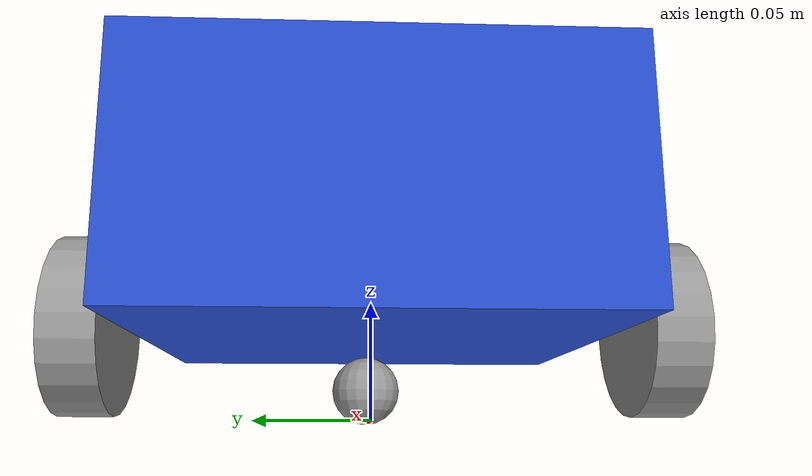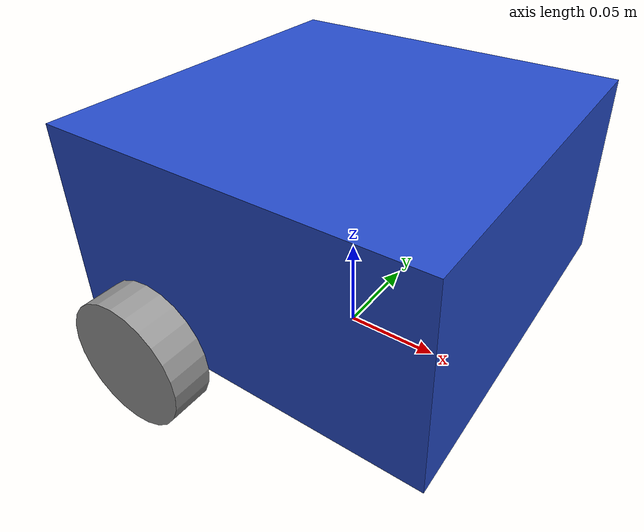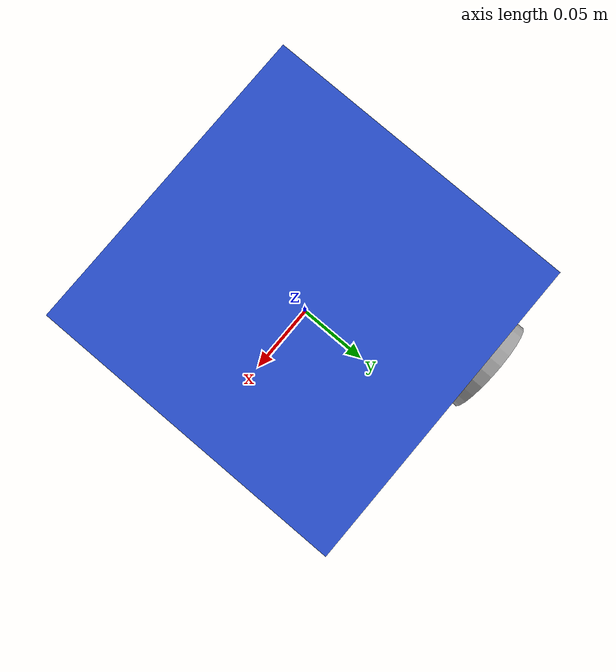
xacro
<?xml version="1.0"?>
<robot xmlns:xacro="http://www.ros.org/wiki/xacro">

  <xacro:property name="base_length" value="0.19" />
  <xacro:property name="base_width"  value="0.19" />
  <xacro:property name="base_height" value="0.10" />
  <xacro:property name="base_mass" value="1.0" />

  <xacro:property name="wheel_radius" value="0.033" />
  <xacro:property name="wheel_length" value="0.02" />
  <xacro:property name="wheel_mass" value="0.3" />

    <!-- BASE FOOTPRINT LINK -->
  <link name="base_footprint" />

  <!-- BASE LINK -->
  <link name="base_link">
    <visual>
      <geometry>
        <box size="${base_length} ${base_width} ${base_height}" />
      </geometry>
      <origin xyz="0 0 ${base_height / 2.0}" rpy="0 0 0" />
      <material name="blue" />
    </visual>

    <collision>
      <geometry>
        <box size="${base_length} ${base_width} ${base_height}" />
      </geometry>
      <origin xyz="0 0 ${base_height / 2.0}" rpy="0 0 0" />
    </collision>

    <!-- Approximate inertial for a solid box, mass ~ 2.0 kg -->
    <inertial>
      <origin xyz="0 0 0" rpy="0 0 0"/>
      <mass value="${base_mass}"/>
      <inertia
        ixx="${base_mass / 12.0 * (base_length*base_length + base_height*base_height)}" ixy="0.0" ixz="0.0"
        iyy="${base_mass / 12.0 * (base_height*base_height + base_width*base_width)}" iyz="0.0"
        izz="${base_mass / 12.0 * (base_width*base_width + base_length*base_length)}"/>
    </inertial>
  </link>

  <!-- WHEEL MACRO -->
  <xacro:macro name="wheel_link" params="prefix">
    <link name="${prefix}_wheel_link">
      <visual>
        <geometry>
          <cylinder radius="${wheel_radius}" length="${wheel_length}" />
        </geometry>
        <origin xyz="0 0 0" rpy="${pi / 2.0} 0 0" />
        <material name="grey" />
      </visual>

      <collision>
        <geometry>
          <cylinder radius="${wheel_radius}" length="${wheel_length}" />
        </geometry>
        <origin xyz="0 0 0" rpy="${pi / 2.0} 0 0" />
      </collision>

      <!-- Approximate inertial for a wheel, mass ~ 0.1 kg -->
      <inertial>
        <mass value="0.1"/>
        <origin xyz="0 0 0" rpy="0 0 0"/>
        <!-- Simple diagonal inertia; fine for small wheels -->
        <inertia ixx="0.0001" ixy="0.0" ixz="0.0"
                 iyy="0.0001" iyz="0.0"
                 izz="0.0001"/>
      </inertial>
    </link>
  </xacro:macro>

  <xacro:wheel_link prefix="right" />
  <xacro:wheel_link prefix="left" />

  <!-- CASTER WHEEL -->
  <link name="caster_wheel_link">
    <visual>
      <geometry>
        <sphere radius="${wheel_radius / 2.0}" />
      </geometry>
      <origin xyz="0 0 0" rpy="0 0 0" />
      <material name="grey" />
    </visual>

    <collision>
      <geometry>
        <sphere radius="${wheel_radius / 2.0}" />
      </geometry>
      <origin xyz="0 0 0" rpy="0 0 0" />
    </collision>

    <!-- Approximate inertial for a small caster, mass ~ 0.05 kg -->
    <inertial>
      <mass value="0.05"/>
      <origin xyz="0 0 0" rpy="0 0 0"/>
      <inertia ixx="0.00005" ixy="0.0" ixz="0.0"
               iyy="0.00005" iyz="0.0"
               izz="0.00005"/>
    </inertial>
  </link>

  <!-- JOINTS -->
  <joint name="base_joint" type="fixed">
    <parent link="base_footprint" />
    <child link="base_link" />
    <origin xyz="0 0 ${wheel_radius}" rpy="0 0 0"/>
  </joint>

  <joint name="right_wheel_joint" type="continuous">
    <parent link="base_link" />
    <child link="right_wheel_link" />
    <origin xyz="${-base_length / 4.0} ${-(base_width + wheel_length) / 2.0} 0" rpy="0 0 0" />
    <axis xyz="0 1 0" />
  </joint>

  <joint name="left_wheel_joint" type="continuous">
    <parent link="base_link" />
    <child link="left_wheel_link" />
    <origin xyz="${-base_length / 4.0} ${(base_width + wheel_length) / 2.0} 0" rpy="0 0 0" />
    <axis xyz="0 1 0" />
  </joint>

  <joint name="base_caster_wheel_joint" type="fixed">
    <parent link="base_link" />
    <child link="caster_wheel_link" />
    <origin xyz="${base_length / 3.0} 0 ${-wheel_radius / 2.0}" rpy="0 0 0" />
  </joint>

</robot>
